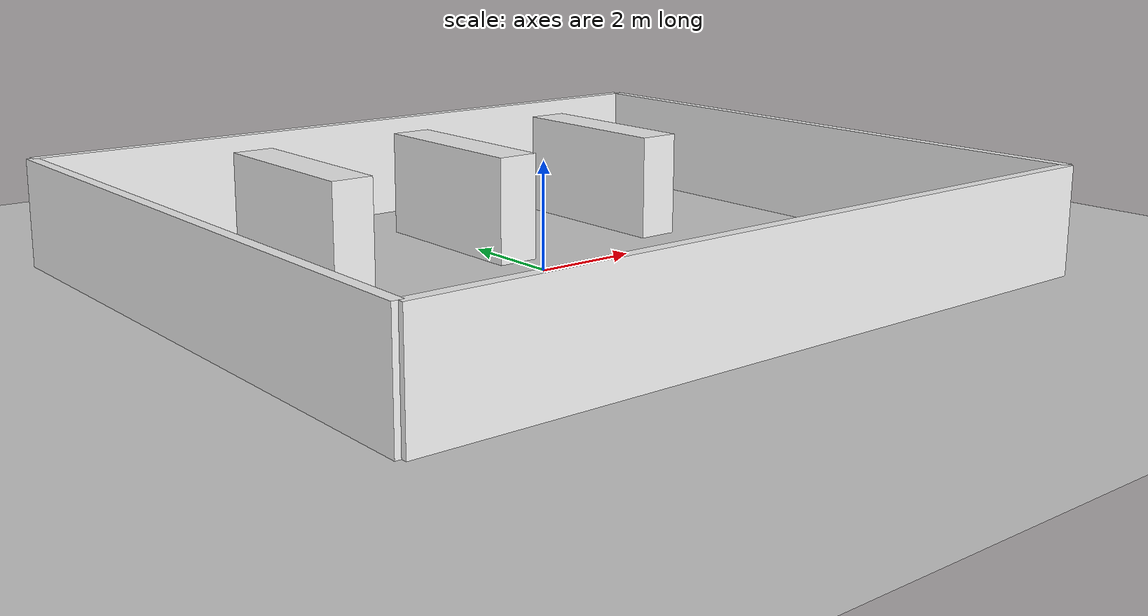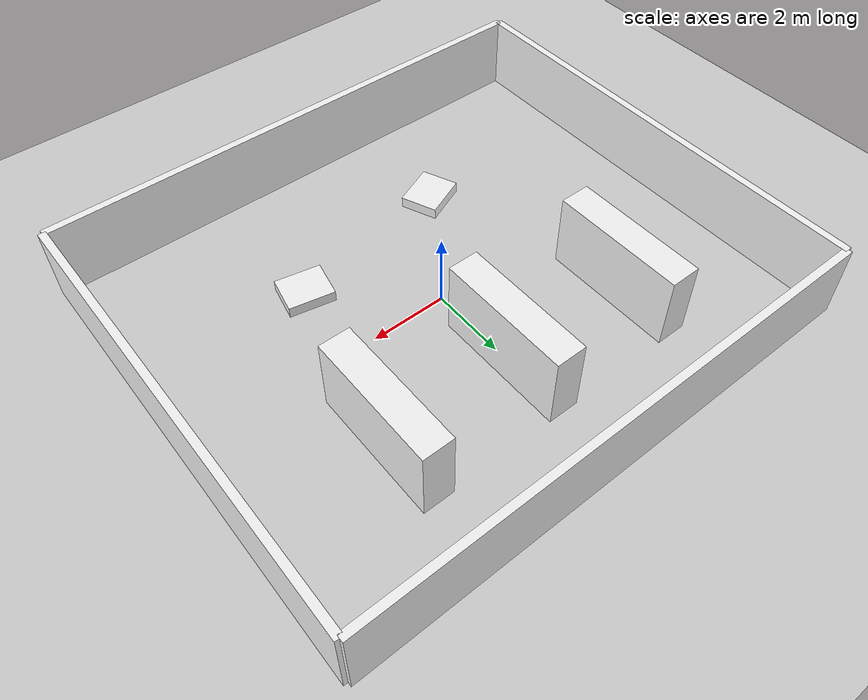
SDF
<?xml version="1.0" ?>
<sdf version="1.9">
  <world name="warehouse">
    <plugin filename="gz-sim-physics-system" name="gz::sim::systems::Physics"/>
    <plugin filename="gz-sim-user-commands-system" name="gz::sim::systems::UserCommands"/>
    <plugin filename="gz-sim-scene-broadcaster-system" name="gz::sim::systems::SceneBroadcaster"/>
    <plugin filename="gz-sim-sensors-system" name="gz::sim::systems::Sensors">
      <render_engine>ogre2</render_engine>
    </plugin>

    <scene>
      <ambient>0.9 0.9 0.9 1</ambient>
      <background>0.8 0.8 0.8 1</background>
    </scene>

    <physics name="default_physics" default="true" type="ode">
      <max_step_size>0.001</max_step_size>
      <real_time_factor>1.0</real_time_factor>
    </physics>

    <light type="directional" name="sun">
      <cast_shadows>true</cast_shadows>
      <pose>0 0 10 0 0 0</pose>
      <diffuse>1.0 1.0 1.0 1</diffuse>
      <specular>0.4 0.4 0.4 1</specular>
      <direction>-0.5 0.1 -0.9</direction>
    </light>

    <model name="ground_plane">
      <static>true</static>
      <link name="link">
        <collision name="collision">
          <geometry>
            <plane>
              <normal>0 0 1</normal>
              <size>120 120</size>
            </plane>
          </geometry>
        </collision>
        <visual name="visual">
          <geometry>
            <plane>
              <normal>0 0 1</normal>
              <size>120 120</size>
            </plane>
          </geometry>
        </visual>
      </link>
    </model>

    <model name="wh_wall_n">
      <static>true</static>
      <pose>0 6 1 0 0 0</pose>
      <link name="link">
        <collision name="collision"><geometry><box><size>14 0.2 2</size></box></geometry></collision>
        <visual name="visual">
          <geometry><box><size>14 0.2 2</size></box></geometry>
          <material>
            <ambient>0.95 0.95 0.95 1</ambient>
            <diffuse>0.95 0.95 0.95 1</diffuse>
            <specular>0.2 0.2 0.2 1</specular>
          </material>
        </visual>
      </link>
    </model>

    <model name="wh_wall_s">
      <static>true</static>
      <pose>0 -6 1 0 0 0</pose>
      <link name="link">
        <collision name="collision"><geometry><box><size>14 0.2 2</size></box></geometry></collision>
        <visual name="visual">
          <geometry><box><size>14 0.2 2</size></box></geometry>
          <material>
            <ambient>0.95 0.95 0.95 1</ambient>
            <diffuse>0.95 0.95 0.95 1</diffuse>
            <specular>0.2 0.2 0.2 1</specular>
          </material>
        </visual>
      </link>
    </model>

    <model name="wh_wall_e">
      <static>true</static>
      <pose>7 0 1 0 0 0</pose>
      <link name="link">
        <collision name="collision"><geometry><box><size>0.2 12 2</size></box></geometry></collision>
        <visual name="visual">
          <geometry><box><size>0.2 12 2</size></box></geometry>
          <material>
            <ambient>0.95 0.95 0.95 1</ambient>
            <diffuse>0.95 0.95 0.95 1</diffuse>
            <specular>0.2 0.2 0.2 1</specular>
          </material>
        </visual>
      </link>
    </model>

    <model name="wh_wall_w">
      <static>true</static>
      <pose>-7 0 1 0 0 0</pose>
      <link name="link">
        <collision name="collision"><geometry><box><size>0.2 12 2</size></box></geometry></collision>
        <visual name="visual">
          <geometry><box><size>0.2 12 2</size></box></geometry>
          <material>
            <ambient>0.95 0.95 0.95 1</ambient>
            <diffuse>0.95 0.95 0.95 1</diffuse>
            <specular>0.2 0.2 0.2 1</specular>
          </material>
        </visual>
      </link>
    </model>

    <model name="rack_1">
      <static>true</static>
      <pose>-3.5 2.5 1 0 0 0</pose>
      <link name="link">
        <collision name="collision"><geometry><box><size>0.8 3.5 2</size></box></geometry></collision>
        <visual name="visual">
          <geometry><box><size>0.8 3.5 2</size></box></geometry>
          <material>
            <ambient>0.95 0.95 0.95 1</ambient>
            <diffuse>0.95 0.95 0.95 1</diffuse>
            <specular>0.2 0.2 0.2 1</specular>
          </material>
        </visual>
      </link>
    </model>

    <model name="rack_2">
      <static>true</static>
      <pose>0.0 2.5 1 0 0 0</pose>
      <link name="link">
        <collision name="collision"><geometry><box><size>0.8 3.5 2</size></box></geometry></collision>
        <visual name="visual">
          <geometry><box><size>0.8 3.5 2</size></box></geometry>
          <material>
            <ambient>0.95 0.95 0.95 1</ambient>
            <diffuse>0.95 0.95 0.95 1</diffuse>
            <specular>0.2 0.2 0.2 1</specular>
          </material>
        </visual>
      </link>
    </model>

    <model name="rack_3">
      <static>true</static>
      <pose>3.5 2.5 1 0 0 0</pose>
      <link name="link">
        <collision name="collision"><geometry><box><size>0.8 3.5 2</size></box></geometry></collision>
        <visual name="visual">
          <geometry><box><size>0.8 3.5 2</size></box></geometry>
          <material>
            <ambient>0.95 0.95 0.95 1</ambient>
            <diffuse>0.95 0.95 0.95 1</diffuse>
            <specular>0.2 0.2 0.2 1</specular>
          </material>
        </visual>
      </link>
    </model>

    <model name="pallet_1">
      <static>true</static>
      <pose>-2.0 -3.0 0.15 0 0 0.4</pose>
      <link name="link">
        <collision name="collision"><geometry><box><size>1.2 1.0 0.3</size></box></geometry></collision>
        <visual name="visual">
          <geometry><box><size>1.2 1.0 0.3</size></box></geometry>
          <material>
            <ambient>0.95 0.95 0.95 1</ambient>
            <diffuse>0.95 0.95 0.95 1</diffuse>
            <specular>0.2 0.2 0.2 1</specular>
          </material>
        </visual>
      </link>
    </model>

    <model name="pallet_2">
      <static>true</static>
      <pose>2.5 -2.2 0.15 0 0 -0.2</pose>
      <link name="link">
        <collision name="collision"><geometry><box><size>1.2 1.0 0.3</size></box></geometry></collision>
        <visual name="visual">
          <geometry><box><size>1.2 1.0 0.3</size></box></geometry>
          <material>
            <ambient>0.95 0.95 0.95 1</ambient>
            <diffuse>0.95 0.95 0.95 1</diffuse>
            <specular>0.2 0.2 0.2 1</specular>
          </material>
        </visual>
      </link>
    </model>
  </world>
</sdf>
